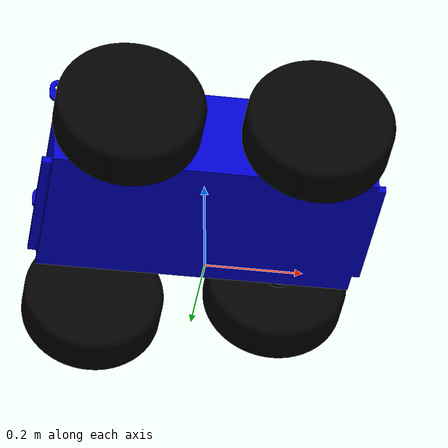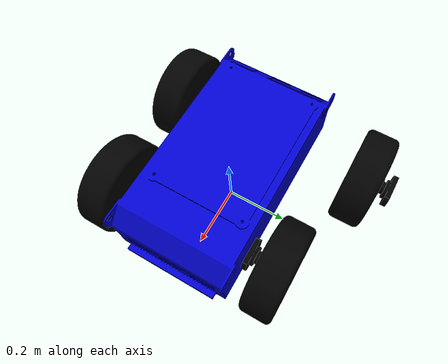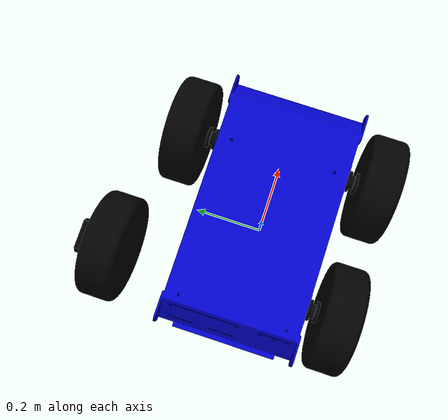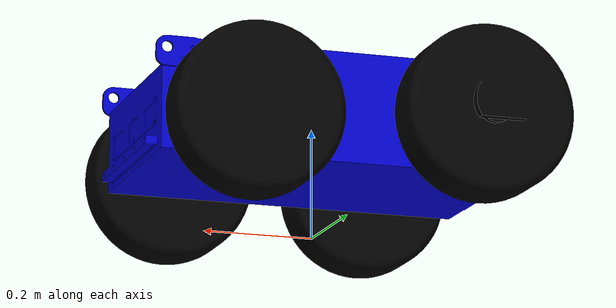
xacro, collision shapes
<?xml version="1.0" encoding="utf-8"?>
<robot
  name="base_description">

  <link name="base_footprint"/>
  <joint name="base_to_footprint" type="fixed">
      <parent link="base_footprint"/>
      <child link="body_link"/>
      <origin xyz="0 0 0.300" rpy="0 0 0"/>
    </joint>

  <link
    name="body_link">
    <inertial>
      <origin
        xyz="-0.0006348 -6.2841E-06 -0.10053"
        rpy="0 0 0" />
      <mass
        value="46.805" />
      <inertia
        ixx="0.63839"
        ixy="5.6449E-19"
        ixz="-1.7289E-05"
        iyy="1.773"
        iyz="-6.7084E-18"
        izz="2.1118" />
    </inertial>
    <visual>
      <origin
        xyz="0 0 0"
        rpy="0 0 0" />
      <geometry>
        <mesh
          filename="package://robot_description/meshes/visual/base_link.STL" />
      </geometry>
      <material
        name="blue">
        <color rgba="0.0 0.0 0.8 1.0"/>
      </material>
    </visual>
    <collision>
      <origin
        xyz="0 0 0"
        rpy="0 0 0" />
      <geometry>
        <mesh
          filename="package://robot_description/meshes/collision/base_link.STL" />
      </geometry>
    </collision>
  </link>

  <link
    name="front_right_wheel_link">
    <inertial>
      <origin
        xyz="2.7756E-17 1.3878E-17 0.051652"
        rpy="0 0 0" />
      <mass
        value="7.1319" />
      <inertia
        ixx="0.045456"
        ixy="1.2429E-10"
        ixz="-1.8098E-18"
        iyy="0.045495"
        iyz="-4.9282E-12"
        izz="0.077719" />
    </inertial>
    <visual>
      <origin
        xyz="0 0 0"
        rpy="0 0 0" />
      <geometry>
        <mesh
          filename="package://robot_description/meshes/visual/front_right_wheel_link.STL" />
      </geometry>
      <material
        name="black">
        <color rgba="0.0 0.0 0.0 1.0"/>
      </material>
    </visual>
    <collision>
      <origin
        xyz="0 0 0"
        rpy="0 0 0" />
      <geometry>
        <mesh
          filename="package://robot_description/meshes/collision/front_right_wheel_link.STL" />
      </geometry>
    </collision>
  </link>
  <joint
    name="FRWL"
    type="continuous">
    <origin
      xyz="0.18996 -0.3225 -0.146"
      rpy="-1.5708 0 0" />
    <parent
      link="body_link" />
    <child
      link="front_right_wheel_link" />
    <axis
      xyz="0 0 1" />
    <limit
      effort="12"
      velocity="7" />
    <dynamics
      damping="0.25"
      friction="0.8" />
  </joint>

  <link
    name="fron_left_wheel_link">
    <inertial>
      <origin
        xyz="-2.7756E-17 1.3878E-17 -0.051652"
        rpy="0 0 0" />
      <mass
        value="7.1319" />
      <inertia
        ixx="0.045456"
        ixy="-1.2429E-10"
        ixz="-1.5576E-18"
        iyy="0.045495"
        iyz="4.9282E-12"
        izz="0.077719" />
    </inertial>
    <visual>
      <origin
        xyz="0 0 0"
        rpy="0 0 0" />
      <geometry>
        <mesh
          filename="package://robot_description/meshes/visual/fron_left_wheel_link.STL" />
      </geometry>
      <material
        name="black">
        <color rgba="0.0 0.0 0.0 1.0"/>
      </material>
    </visual>
    <collision>
      <origin
        xyz="0 0 0"
        rpy="0 0 0" />
      <geometry>
        <mesh
          filename="package://robot_description/meshes/collision/fron_left_wheel_link.STL" />
      </geometry>
    </collision>
  </link>
  <joint
    name="FLWL"
    type="continuous">
    <origin
      xyz="0.18996 0.3225 -0.146"
      rpy="-1.5708 0 0" />
    <parent
      link="body_link" />
    <child
      link="fron_left_wheel_link" />
    <axis
      xyz="0 0 1" />
    <limit
      effort="12"
      velocity="7" />
    <dynamics
      damping="0.25"
      friction="0.8" />
  </joint>
  <link
    name="rear_right_wheel_link">
    <inertial>
      <origin
        xyz="2.7756E-17 1.3878E-17 0.051652"
        rpy="0 0 0" />
      <mass
        value="7.1319" />
      <inertia
        ixx="0.045456"
        ixy="1.2429E-10"
        ixz="-1.6989E-18"
        iyy="0.045495"
        iyz="-4.9282E-12"
        izz="0.077719" />
    </inertial>
    <visual>
      <origin
        xyz="0 0 0"
        rpy="0 0 0" />
      <geometry>
        <mesh
          filename="package://robot_description/meshes/visual/rear_right_wheel_link.STL" />
      </geometry>
      <material
        name="black">
        <color rgba="0.0 0.0 0.0 1.0"/>
      </material>
    </visual>
    <collision>
      <origin
        xyz="0 0 0"
        rpy="0 0 0" />
      <geometry>
        <mesh
          filename="package://robot_description/meshes/collision/rear_right_wheel_link.STL" />
      </geometry>
    </collision>
  </link>
  <joint
    name="RRWL"
    type="continuous">
    <origin
      xyz="-0.19004 -0.3225 -0.146"
      rpy="-1.5708 0 0" />
    <parent
      link="body_link" />
    <child
      link="rear_right_wheel_link" />
    <axis
      xyz="0 0 1" />
    <limit
      effort="12"
      velocity="7" />
    <dynamics
      damping="0.25"
      friction="0.8" />
  </joint>
  <link
    name="rear_left_wheel_link">
    <inertial>
      <origin
        xyz="-2.7756E-17 1.3878E-17 -0.051652"
        rpy="0 0 0" />
      <mass
        value="7.1319" />
      <inertia
        ixx="0.045456"
        ixy="-1.2429E-10"
        ixz="-1.8391E-18"
        iyy="0.045495"
        iyz="4.9282E-12"
        izz="0.077719" />
    </inertial>
    <visual>
      <origin
        xyz="0 0 0"
        rpy="0 0 0" />
      <geometry>
        <mesh
          filename="package://robot_description/meshes/visual/rear_left_wheel_link.STL" />
      </geometry>
      <material
        name="black">
        <color rgba="0.0 0.0 0.0 1.0"/>
      </material>
    </visual>
    <collision>
      <origin
        xyz="0 0 0"
        rpy="0 0 0" />
      <geometry>
        <mesh
          filename="package://robot_description/meshes/collision/rear_left_wheel_link.STL" />
      </geometry>
    </collision>
  </link>
  <joint
    name="RLWL"
    type="continuous">
    <origin
      xyz="-0.19004 0.3225 -0.146"
      rpy="-1.5708 0 0" />
    <parent
      link="body_link" />
    <child
      link="rear_left_wheel_link" />
    <axis
      xyz="0 0 1" />
    <limit
      effort="12"
      velocity="7" />
    <dynamics
      damping="0.25"
      friction="0.8" />
  </joint>

</robot>
